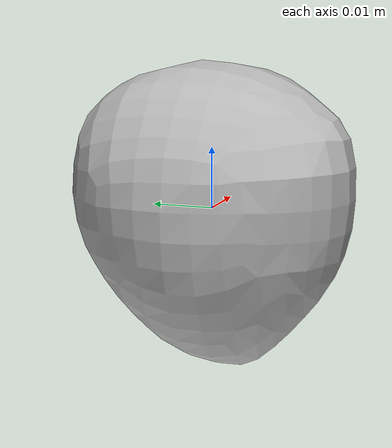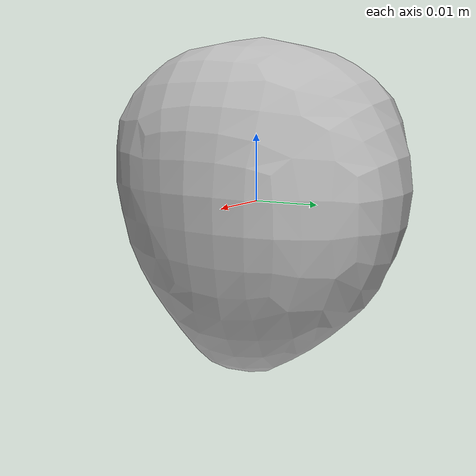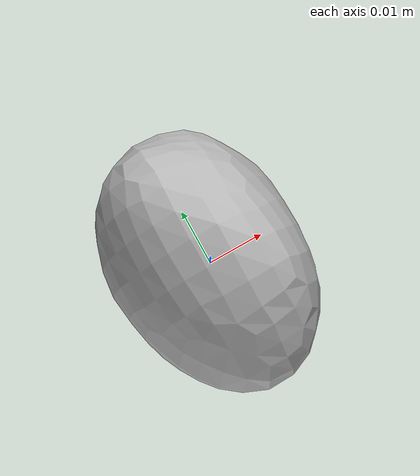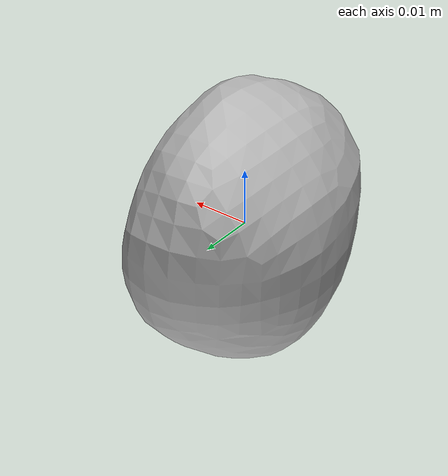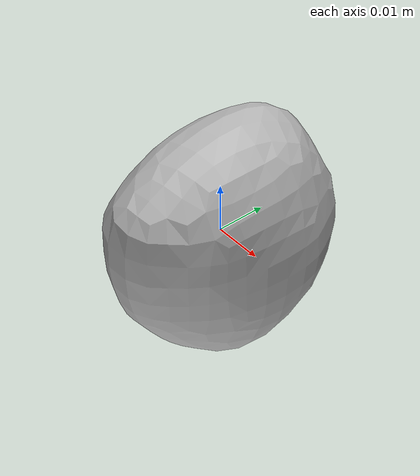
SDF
<?xml version='1.0'?>
<sdf version='1.6'>

  <model name='texture_123-87'>
    <link name='texture_123-87'>
      <pose frame=''>0 0 0 0 0 0</pose>
      <inertial>
        <pose frame=''>0 0 0 0 0 0</pose>
        <mass>0.1</mass>
        <inertia>
          <ixx>0.000156</ixx>
          <ixy>0</ixy>
          <ixz>0</ixz>
          <iyy>0.000156</iyy>
          <iyz>0</iyz>
          <izz>0.000156</izz>
        </inertia>
      </inertial>

      <collision name='base_collision'>
        <pose frame=''>0 0 0 0 0 0</pose>
        <geometry>
          <mesh>
            <scale>1 1 1</scale>
            <uri>texture_123-87.obj</uri>
          </mesh>
        </geometry>
        <drake:proximity_properties>
          <drake:mu_dynamic>0.5</drake:mu_dynamic>
          <drake:mu_static>0.5</drake:mu_static>
          <drake:mesh_resolution_hint>0.001</drake:mesh_resolution_hint>
          <drake:elastic_modulus>5.0e4</drake:elastic_modulus>
          <drake:hunt_crossley_dissipation>1.25</drake:hunt_crossley_dissipation>
          <drake:rigid_hydroelastic/>
        </drake:proximity_properties>
      </collision>

      <visual name='base_visual'>
      <!-- See texture_123-87.model.yaml file -->
        <pose frame=''>0 0 0 0 0 0</pose>
        <geometry>
          <mesh>
            <scale>1 1 1</scale>
            <uri>texture_123-87.obj</uri>
          </mesh>
        </geometry>
        <material>
          <drake:diffuse_map>texture_123.png</drake:diffuse_map>
        </material>
      </visual>
    </link>
  </model>
</sdf>
